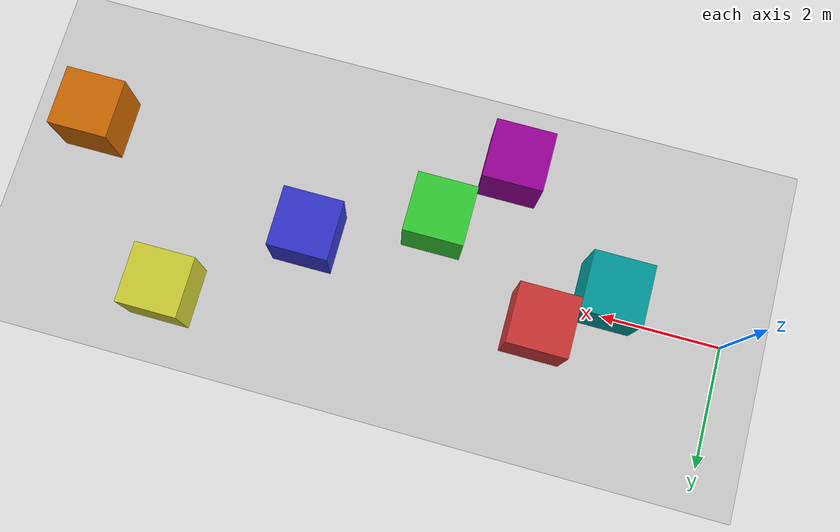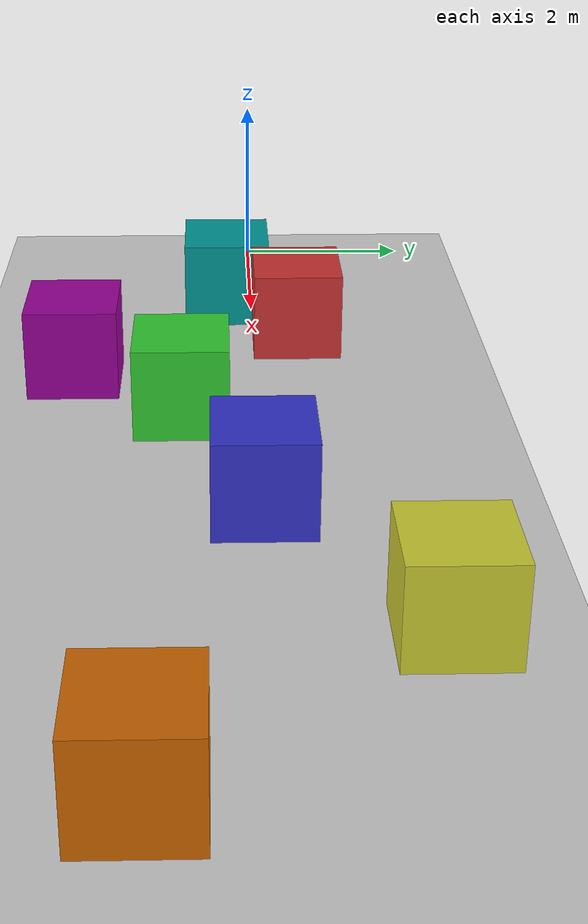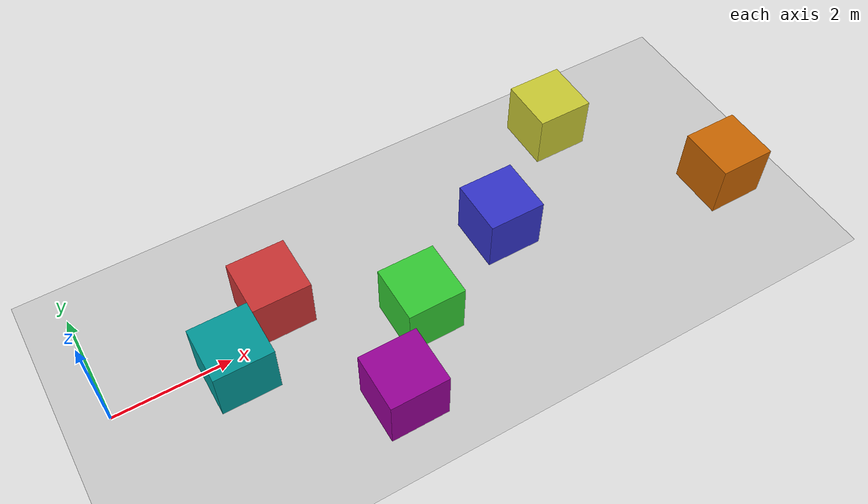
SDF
<?xml version="1.0"?>
<sdf version="1.6">
  <world name="obstacle_world">

    <!-- ============================================================
         PHYSICS
    ============================================================ -->
    <physics type="ode">
      <real_time_update_rate>1000.0</real_time_update_rate>
      <max_step_size>0.001</max_step_size>
      <real_time_factor>1</real_time_factor>
    </physics>

    <!-- ============================================================
         LIGHTING
    ============================================================ -->
    <include>
      <uri>model://sun</uri>
    </include>

    <!-- ============================================================
         GROUND PLANE
    ============================================================ -->
    <include>
      <uri>model://ground_plane</uri>
    </include>

    <!-- Obstacle 1: straight ahead, slightly left -->
    <model name="obstacle_1">
      <static>true</static>
      <pose>3.0 0.5 0.5 0 0 0</pose>
      <link name="link">
        <collision name="collision">
          <geometry><box><size>1 1 1</size></box></geometry>
        </collision>
        <visual name="visual">
          <geometry><box><size>1 1 1</size></box></geometry>
          <material>
            <ambient>0.8 0.2 0.2 1</ambient>
            <diffuse>0.8 0.2 0.2 1</diffuse>
          </material>
        </visual>
      </link>
    </model>

    <!-- Obstacle 2: further ahead, right of centre -->
    <model name="obstacle_2">
      <static>true</static>
      <pose>5.0 -0.8 0.5 0 0 0</pose>
      <link name="link">
        <collision name="collision">
          <geometry><box><size>1 1 1</size></box></geometry>
        </collision>
        <visual name="visual">
          <geometry><box><size>1 1 1</size></box></geometry>
          <material>
            <ambient>0.2 0.8 0.2 1</ambient>
            <diffuse>0.2 0.8 0.2 1</diffuse>
          </material>
        </visual>
      </link>
    </model>

    <!-- Obstacle 3: blocking the centre channel -->
    <model name="obstacle_3">
      <static>true</static>
      <pose>7.0 0.0 0.5 0 0 0</pose>
      <link name="link">
        <collision name="collision">
          <geometry><box><size>1 1 1</size></box></geometry>
        </collision>
        <visual name="visual">
          <geometry><box><size>1 1 1</size></box></geometry>
          <material>
            <ambient>0.2 0.2 0.8 1</ambient>
            <diffuse>0.2 0.2 0.8 1</diffuse>
          </material>
        </visual>
      </link>
    </model>

    <!-- Obstacle 4: offset left, creating an S-curve -->
    <model name="obstacle_4">
      <static>true</static>
      <pose>9.0 1.5 0.5 0 0 0</pose>
      <link name="link">
        <collision name="collision">
          <geometry><box><size>1 1 1</size></box></geometry>
        </collision>
        <visual name="visual">
          <geometry><box><size>1 1 1</size></box></geometry>
          <material>
            <ambient>0.8 0.8 0.2 1</ambient>
            <diffuse>0.8 0.8 0.2 1</diffuse>
          </material>
        </visual>
      </link>
    </model>

    <!-- Obstacle 5: far ahead, slightly right — final challenge -->
    <model name="obstacle_5">
      <static>true</static>
      <pose>11.0 -1.0 0.5 0 0 0</pose>
      <link name="link">
        <collision name="collision">
          <geometry><box><size>1 1 1</size></box></geometry>
        </collision>
        <visual name="visual">
          <geometry><box><size>1 1 1</size></box></geometry>
          <material>
            <ambient>0.8 0.4 0.0 1</ambient>
            <diffuse>0.8 0.4 0.0 1</diffuse>
          </material>
        </visual>
      </link>
    </model>

    <!-- Obstacle 6: wall-like barrier across path -->
    <model name="obstacle_6">
      <static>true</static>
      <pose>4.0 -2.0 0.5 0 0 0</pose>
      <link name="link">
        <collision name="collision">
          <geometry><box><size>1 1 1</size></box></geometry>
        </collision>
        <visual name="visual">
          <geometry><box><size>1 1 1</size></box></geometry>
          <material>
            <ambient>0.6 0.0 0.6 1</ambient>
            <diffuse>0.6 0.0 0.6 1</diffuse>
          </material>
        </visual>
      </link>
    </model>

    <!-- Obstacle 7: close and slightly off-centre to trigger early avoiding -->
    <model name="obstacle_7">
      <static>true</static>
      <pose>2.0 -0.3 0.5 0 0 0</pose>
      <link name="link">
        <collision name="collision">
          <geometry><box><size>1 1 1</size></box></geometry>
        </collision>
        <visual name="visual">
          <geometry><box><size>1 1 1</size></box></geometry>
          <material>
            <ambient>0.0 0.6 0.6 1</ambient>
            <diffuse>0.0 0.6 0.6 1</diffuse>
          </material>
        </visual>
      </link>
    </model>

  </world>
</sdf>
